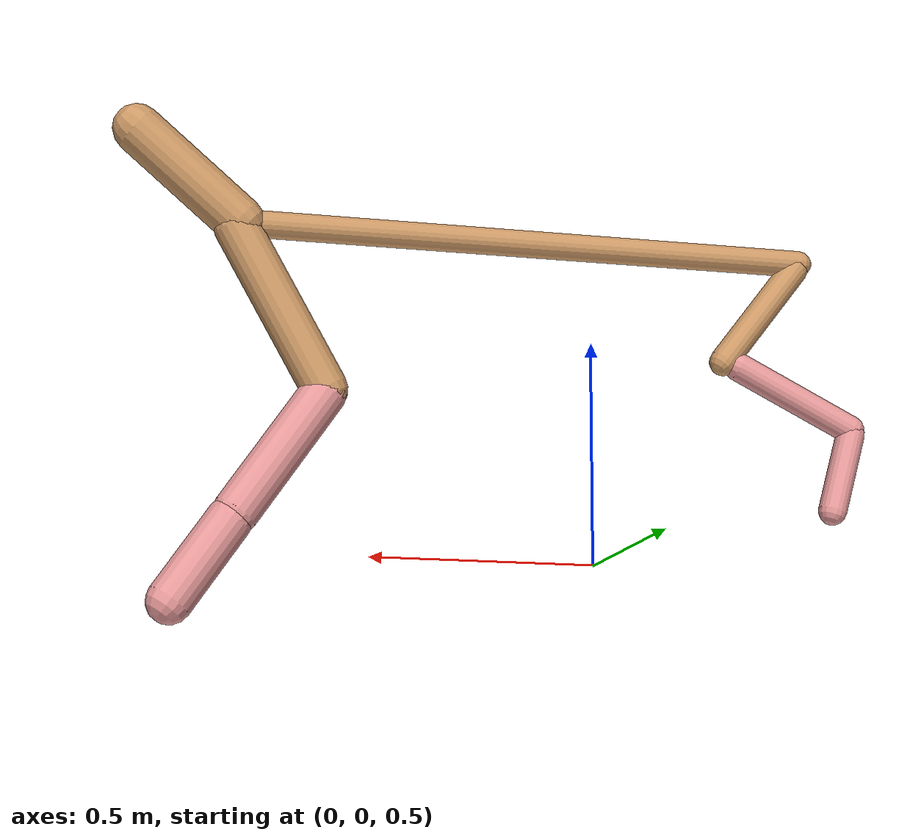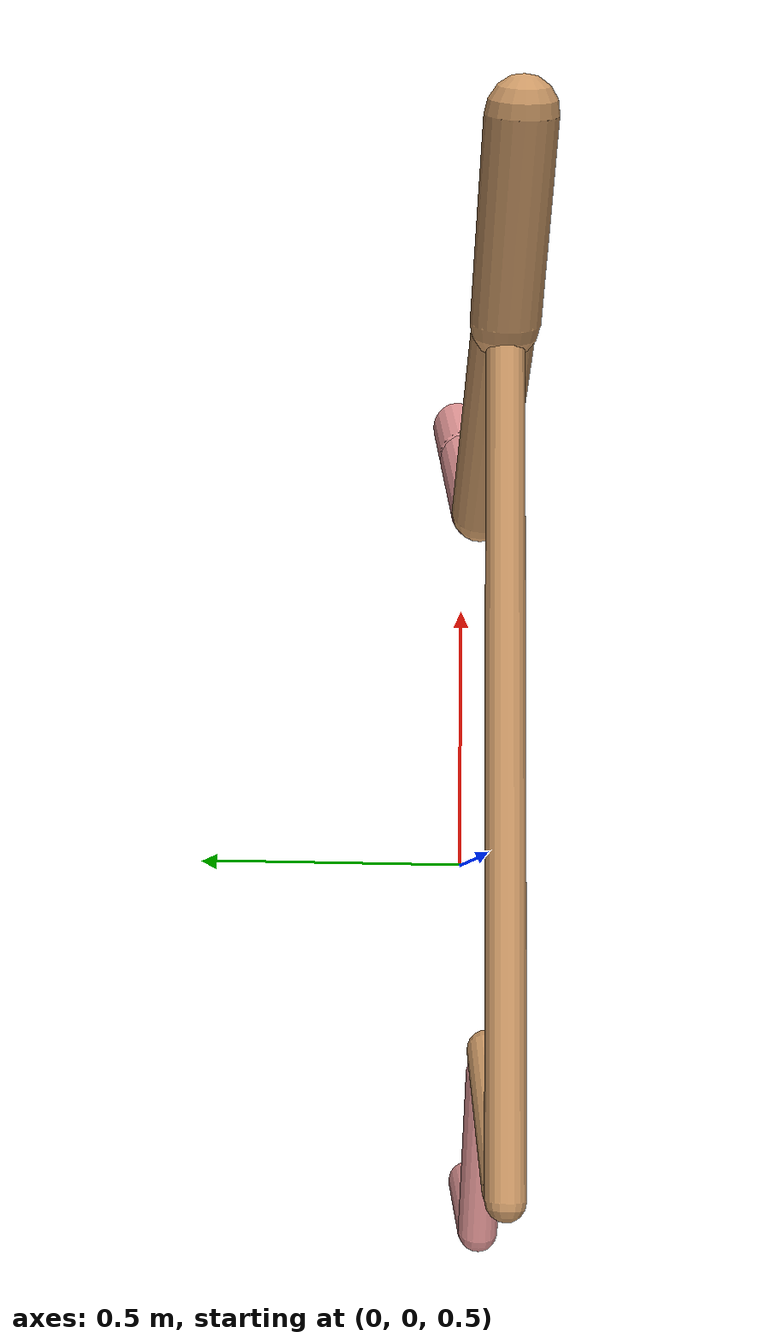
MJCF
<mujoco model="cheetah">
  <compiler angle="radian" coordinate="local" inertiafromgeom="true" settotalmass="14" />
  <default>
    <joint armature=".1" damping=".01" limited="true" solimplimit="0 .8 .03" solreflimit=".02 1" stiffness="8" />
    <geom conaffinity="0" condim="3" contype="1" friction="0.8 .1 .1" rgba="0.8 0.6 .4 1" solimp="0.0 0.8 0.01" solref="0.02 1" />
    <motor ctrllimited="true" ctrlrange="-1 1" />
  </default>
  <size nstack="300000" nuser_geom="1" />
  <option gravity="0 0 -9.81" timestep="0.01" />
  <worldbody>
    <body name="torso" pos="0.0 0.0 1.2217736617304018">
      <joint armature="0" axis="1 0 0" damping="0" limited="false" name="ignorex" pos="0 0 0" stiffness="0" type="slide" />
      <joint armature="0" axis="0 0 1" damping="0" limited="false" name="ignorez" pos="0 0 0" stiffness="0" type="slide" />
      <joint armature="0" axis="0 1 0" damping="0" limited="false" name="ignorey" pos="0 0 0" stiffness="0" type="hinge" />
      <geom fromto="-0.5 0.0 0.0 0.808139846306555 0.0 0.0" name="torso" size="0.030060194660842633" type="capsule" />
      <geom axisangle="0 1 0 .87" name="head" pos="0.908139846306555 0.0 0.1" size="0.054339606019084066 0.15" type="capsule" />

      <body name="bthigh" pos="-.5 0 0">
        <joint axis="0 1 0" damping="6" name="bthigh" pos="0 0 0" range="-.52 1.05" stiffness="240" type="hinge" />
        <geom axisangle="0 1 0 -3.8" name="bthigh" pos="0.0995202660264078 0.0 -0.12937634583433014" size="0.0322 0.14421317778134068" type="capsule" />
        <body name="bshin" pos="0.1590405320528156 0.0 -0.2487526916686603">
          <joint axis="0 1 0" damping="4.5" name="bshin" pos="0 0 0" range="-.785 .785" stiffness="180" type="hinge" />
          <geom axisangle="0 1 0 -2.03" name="bshin" pos="-0.139271977392912 0.0 -0.069635988696456" rgba="0.9 0.6 0.6 1" size="0.0322 0.14918604598069726" type="capsule" />
          <body name="bfoot" pos="-0.278543954785824 0.0 -0.139271977392912">
            <joint axis="0 1 0" damping="3" name="bfoot" pos="0 0 0" range="-.4 .785" stiffness="120" type="hinge" />
            <geom axisangle="0 1 0 -.27" name="bfoot" pos="0.0298492874383724 0.0 -0.09651269605073744" rgba="0.9 0.6 0.6 1" size="0.0322 0.09348992214790362" type="capsule" />
            <inertial mass="10" />
          </body>
        </body>
      </body>
      <body name="fthigh" pos="0.808139846306555 0.0 0.0">
        <joint axis="0 1 0" damping="4.5" name="fthigh" pos="0 0 0" range="-1.5 0.8" stiffness="180" type="hinge" />
        <geom axisangle="0 1 0 .52" name="fthigh" pos="-0.10657592237831051 0.0 -0.18270158121996086" size="0.050206988592050326 0.20558985042902034" type="capsule" />
        <body name="fshin" pos="-0.21315184475662102 0.0 -0.3654031624399217">
          <joint axis="0 1 0" damping="3" name="fshin" pos="0 0 0" range="-1.2 1.1" stiffness="120" type="hinge" />
          <geom axisangle="0 1 0 -.6" name="fshin" pos="0.09887271581581672 0.0 -0.13690068343728468" rgba="0.9 0.6 0.6 1" size="0.050206988592050326 0.1638535650035801" type="capsule" />
          <body name="ffoot" pos="0.19774543163163344 0.0 -0.27380136687456935">
            <joint axis="0 1 0" damping="1.5" name="ffoot" pos="0 0 0" range="-3.1 -0.3" stiffness="60" type="hinge" />
            <geom axisangle="0 1 0 -.6" name="ffoot" pos="0.06565974351147588 0.0 -0.10213737879562916" rgba="0.9 0.6 0.6 1" size="0.050206988592050326 0.1082051844363265" type="capsule" />
            <inertial mass="10" />
          </body>
        </body>
      </body>
    </body>
  </worldbody>
  <actuator>
    <motor gear="120" joint="bthigh" name="bthigh" />
    <motor gear="90" joint="bshin" name="bshin" />
    <motor gear="60" joint="bfoot" name="bfoot" />
    <motor gear="120" joint="fthigh" name="fthigh" />
    <motor gear="60" joint="fshin" name="fshin" />
    <motor gear="30" joint="ffoot" name="ffoot" />
  </actuator>
</mujoco>
